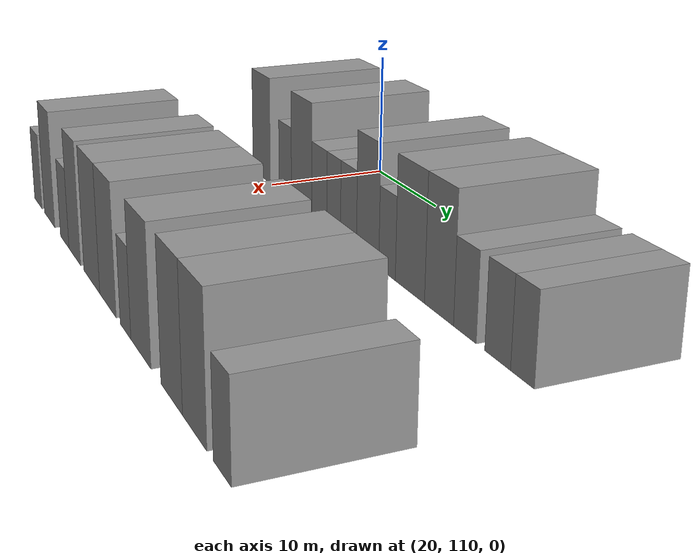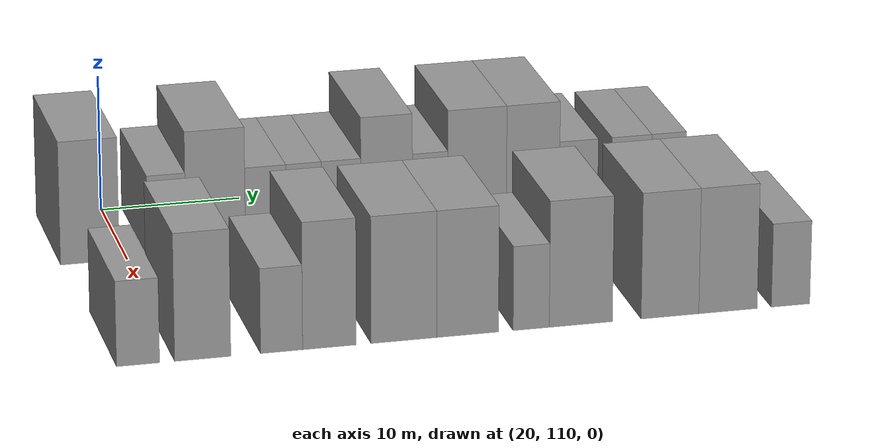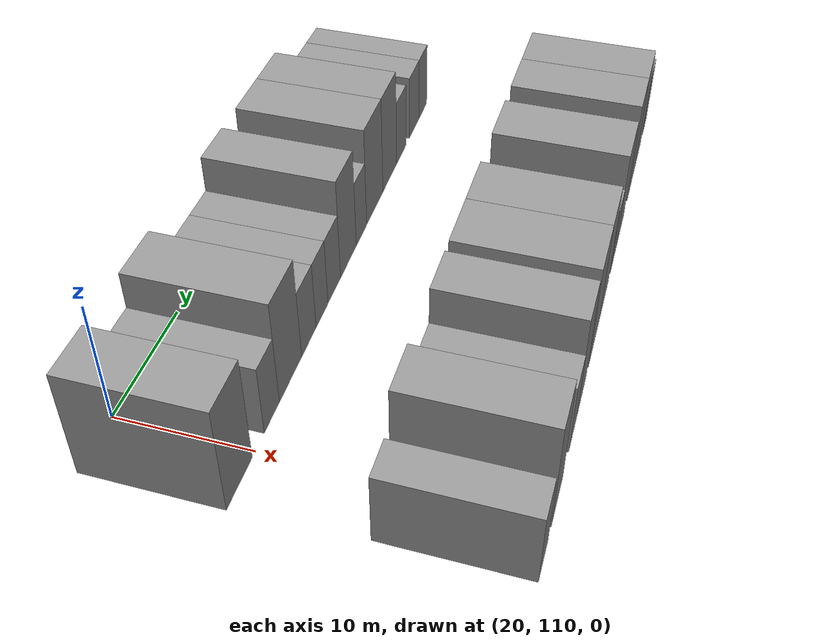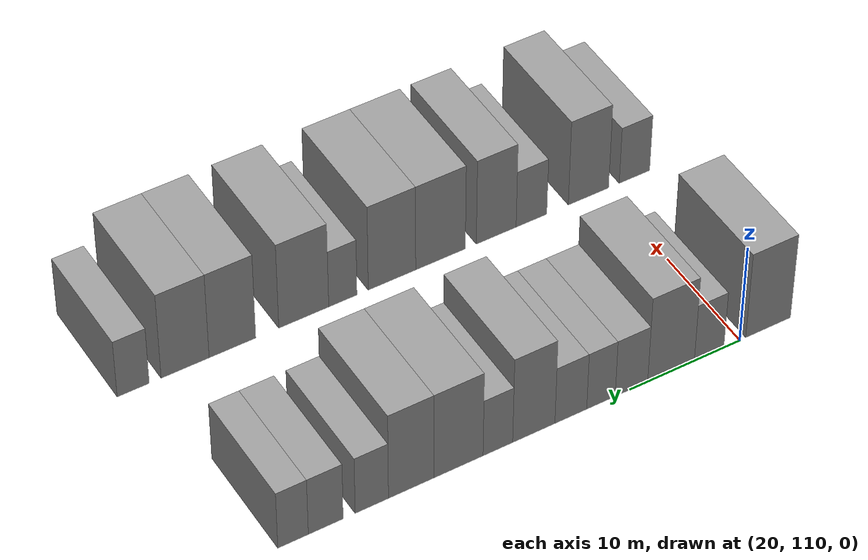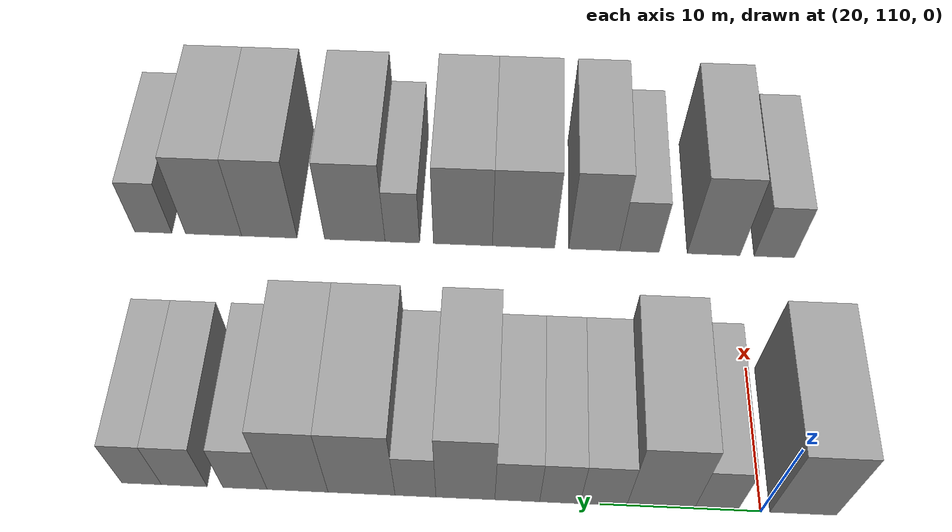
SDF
<sdf version="1.6">
 <world name="default">
  <model name="building_75">
   <static>1</static>
   <pose>25.0000 107.4009 0 0.000000 0.000000 0.000000</pose>
   <link name="link">
    <pose>0 0 4.50 0 0 0</pose>
    <collision name="collision"><geometry><box><size>10.0000 4.1283 9.0000</size></box></geometry></collision>
    <visual name="visual">
     <cast_shadows>0</cast_shadows>
     <geometry><box><size>10.0000 4.1283 9.0000</size></box></geometry>
     <material>
      <script>
       <uri>model://grey_wall/materials/scripts</uri>
       <uri>model://grey_wall/materials/textures</uri>
       <name>vrc/grey_wall</name>
      </script>
     </material>
    </visual>
   </link>
  </model>
  <model name="building_76">
   <static>1</static>
   <pose>25.0000 112.8104 0 0.000000 0.000000 0.000000</pose>
   <link name="link">
    <pose>0 0 3.00 0 0 0</pose>
    <collision name="collision"><geometry><box><size>10.0000 2.6907 6.0000</size></box></geometry></collision>
    <visual name="visual">
     <cast_shadows>0</cast_shadows>
     <geometry><box><size>10.0000 2.6907 6.0000</size></box></geometry>
     <material>
      <script>
       <uri>model://grey_wall/materials/scripts</uri>
       <uri>model://grey_wall/materials/textures</uri>
       <name>vrc/grey_wall</name>
      </script>
     </material>
    </visual>
   </link>
  </model>
  <model name="building_77">
   <static>1</static>
   <pose>25.0000 116.2598 0 0.000000 0.000000 0.000000</pose>
   <link name="link">
    <pose>0 0 4.50 0 0 0</pose>
    <collision name="collision"><geometry><box><size>10.0000 4.2081 9.0000</size></box></geometry></collision>
    <visual name="visual">
     <cast_shadows>0</cast_shadows>
     <geometry><box><size>10.0000 4.2081 9.0000</size></box></geometry>
     <material>
      <script>
       <uri>model://grey_wall/materials/scripts</uri>
       <uri>model://grey_wall/materials/textures</uri>
       <name>vrc/grey_wall</name>
      </script>
     </material>
    </visual>
   </link>
  </model>
  <model name="building_78">
   <static>1</static>
   <pose>25.0000 119.8204 0 0.000000 0.000000 0.000000</pose>
   <link name="link">
    <pose>0 0 3.00 0 0 0</pose>
    <collision name="collision"><geometry><box><size>10.0000 2.9129 6.0000</size></box></geometry></collision>
    <visual name="visual">
     <cast_shadows>0</cast_shadows>
     <geometry><box><size>10.0000 2.9129 6.0000</size></box></geometry>
     <material>
      <script>
       <uri>model://grey_wall/materials/scripts</uri>
       <uri>model://grey_wall/materials/textures</uri>
       <name>vrc/grey_wall</name>
      </script>
     </material>
    </visual>
   </link>
  </model>
  <model name="building_79">
   <static>1</static>
   <pose>25.0000 122.5388 0 0.000000 0.000000 0.000000</pose>
   <link name="link">
    <pose>0 0 3.00 0 0 0</pose>
    <collision name="collision"><geometry><box><size>10.0000 2.5240 6.0000</size></box></geometry></collision>
    <visual name="visual">
     <cast_shadows>0</cast_shadows>
     <geometry><box><size>10.0000 2.5240 6.0000</size></box></geometry>
     <material>
      <script>
       <uri>model://grey_wall/materials/scripts</uri>
       <uri>model://grey_wall/materials/textures</uri>
       <name>vrc/grey_wall</name>
      </script>
     </material>
    </visual>
   </link>
  </model>
  <model name="building_80">
   <static>1</static>
   <pose>25.0000 125.2032 0 0.000000 0.000000 0.000000</pose>
   <link name="link">
    <pose>0 0 3.00 0 0 0</pose>
    <collision name="collision"><geometry><box><size>10.0000 2.8047 6.0000</size></box></geometry></collision>
    <visual name="visual">
     <cast_shadows>0</cast_shadows>
     <geometry><box><size>10.0000 2.8047 6.0000</size></box></geometry>
     <material>
      <script>
       <uri>model://grey_wall/materials/scripts</uri>
       <uri>model://grey_wall/materials/textures</uri>
       <name>vrc/grey_wall</name>
      </script>
     </material>
    </visual>
   </link>
  </model>
  <model name="building_81">
   <static>1</static>
   <pose>25.0000 128.4523 0 0.000000 0.000000 0.000000</pose>
   <link name="link">
    <pose>0 0 4.50 0 0 0</pose>
    <collision name="collision"><geometry><box><size>10.0000 3.6936 9.0000</size></box></geometry></collision>
    <visual name="visual">
     <cast_shadows>0</cast_shadows>
     <geometry><box><size>10.0000 3.6936 9.0000</size></box></geometry>
     <material>
      <script>
       <uri>model://grey_wall/materials/scripts</uri>
       <uri>model://grey_wall/materials/textures</uri>
       <name>vrc/grey_wall</name>
      </script>
     </material>
    </visual>
   </link>
  </model>
  <model name="building_82">
   <static>1</static>
   <pose>25.0000 131.5829 0 0.000000 0.000000 0.000000</pose>
   <link name="link">
    <pose>0 0 3.00 0 0 0</pose>
    <collision name="collision"><geometry><box><size>10.0000 2.5675 6.0000</size></box></geometry></collision>
    <visual name="visual">
     <cast_shadows>0</cast_shadows>
     <geometry><box><size>10.0000 2.5675 6.0000</size></box></geometry>
     <material>
      <script>
       <uri>model://grey_wall/materials/scripts</uri>
       <uri>model://grey_wall/materials/textures</uri>
       <name>vrc/grey_wall</name>
      </script>
     </material>
    </visual>
   </link>
  </model>
  <model name="building_83">
   <static>1</static>
   <pose>25.0000 134.9808 0 0.000000 0.000000 0.000000</pose>
   <link name="link">
    <pose>0 0 4.50 0 0 0</pose>
    <collision name="collision"><geometry><box><size>10.0000 4.2282 9.0000</size></box></geometry></collision>
    <visual name="visual">
     <cast_shadows>0</cast_shadows>
     <geometry><box><size>10.0000 4.2282 9.0000</size></box></geometry>
     <material>
      <script>
       <uri>model://grey_wall/materials/scripts</uri>
       <uri>model://grey_wall/materials/textures</uri>
       <name>vrc/grey_wall</name>
      </script>
     </material>
    </visual>
   </link>
  </model>
  <model name="building_84">
   <static>1</static>
   <pose>25.0000 139.0226 0 0.000000 0.000000 0.000000</pose>
   <link name="link">
    <pose>0 0 4.50 0 0 0</pose>
    <collision name="collision"><geometry><box><size>10.0000 3.8554 9.0000</size></box></geometry></collision>
    <visual name="visual">
     <cast_shadows>0</cast_shadows>
     <geometry><box><size>10.0000 3.8554 9.0000</size></box></geometry>
     <material>
      <script>
       <uri>model://grey_wall/materials/scripts</uri>
       <uri>model://grey_wall/materials/textures</uri>
       <name>vrc/grey_wall</name>
      </script>
     </material>
    </visual>
   </link>
  </model>
  <model name="building_85">
   <static>1</static>
   <pose>25.0000 142.3522 0 0.000000 0.000000 0.000000</pose>
   <link name="link">
    <pose>0 0 3.00 0 0 0</pose>
    <collision name="collision"><geometry><box><size>10.0000 2.8039 6.0000</size></box></geometry></collision>
    <visual name="visual">
     <cast_shadows>0</cast_shadows>
     <geometry><box><size>10.0000 2.8039 6.0000</size></box></geometry>
     <material>
      <script>
       <uri>model://grey_wall/materials/scripts</uri>
       <uri>model://grey_wall/materials/textures</uri>
       <name>vrc/grey_wall</name>
      </script>
     </material>
    </visual>
   </link>
  </model>
  <model name="building_86">
   <static>1</static>
   <pose>25.0000 146.2095 0 0.000000 0.000000 0.000000</pose>
   <link name="link">
    <pose>0 0 3.00 0 0 0</pose>
    <collision name="collision"><geometry><box><size>10.0000 2.9105 6.0000</size></box></geometry></collision>
    <visual name="visual">
     <cast_shadows>0</cast_shadows>
     <geometry><box><size>10.0000 2.9105 6.0000</size></box></geometry>
     <material>
      <script>
       <uri>model://grey_wall/materials/scripts</uri>
       <uri>model://grey_wall/materials/textures</uri>
       <name>vrc/grey_wall</name>
      </script>
     </material>
    </visual>
   </link>
  </model>
  <model name="building_87">
   <static>1</static>
   <pose>25.0000 148.9270 0 0.000000 0.000000 0.000000</pose>
   <link name="link">
    <pose>0 0 3.00 0 0 0</pose>
    <collision name="collision"><geometry><box><size>10.0000 2.5246 6.0000</size></box></geometry></collision>
    <visual name="visual">
     <cast_shadows>0</cast_shadows>
     <geometry><box><size>10.0000 2.5246 6.0000</size></box></geometry>
     <material>
      <script>
       <uri>model://grey_wall/materials/scripts</uri>
       <uri>model://grey_wall/materials/textures</uri>
       <name>vrc/grey_wall</name>
      </script>
     </material>
    </visual>
   </link>
  </model>
  <model name="building_174">
   <static>1</static>
   <pose>44.0000 107.2010 0 0.000000 0.000000 0.000000</pose>
   <link name="link">
    <pose>0 0 3.00 0 0 0</pose>
    <collision name="collision"><geometry><box><size>10.0000 2.8796 6.0000</size></box></geometry></collision>
    <visual name="visual">
     <cast_shadows>0</cast_shadows>
     <geometry><box><size>10.0000 2.8796 6.0000</size></box></geometry>
     <material>
      <script>
       <uri>model://grey_wall/materials/scripts</uri>
       <uri>model://grey_wall/materials/textures</uri>
       <name>vrc/grey_wall</name>
      </script>
     </material>
    </visual>
   </link>
  </model>
  <model name="building_175">
   <static>1</static>
   <pose>44.0000 111.5287 0 0.000000 0.000000 0.000000</pose>
   <link name="link">
    <pose>0 0 4.50 0 0 0</pose>
    <collision name="collision"><geometry><box><size>10.0000 3.7758 9.0000</size></box></geometry></collision>
    <visual name="visual">
     <cast_shadows>0</cast_shadows>
     <geometry><box><size>10.0000 3.7758 9.0000</size></box></geometry>
     <material>
      <script>
       <uri>model://grey_wall/materials/scripts</uri>
       <uri>model://grey_wall/materials/textures</uri>
       <name>vrc/grey_wall</name>
      </script>
     </material>
    </visual>
   </link>
  </model>
  <model name="building_176">
   <static>1</static>
   <pose>44.0000 116.8384 0 0.000000 0.000000 0.000000</pose>
   <link name="link">
    <pose>0 0 3.00 0 0 0</pose>
    <collision name="collision"><geometry><box><size>10.0000 2.8436 6.0000</size></box></geometry></collision>
    <visual name="visual">
     <cast_shadows>0</cast_shadows>
     <geometry><box><size>10.0000 2.8436 6.0000</size></box></geometry>
     <material>
      <script>
       <uri>model://grey_wall/materials/scripts</uri>
       <uri>model://grey_wall/materials/textures</uri>
       <name>vrc/grey_wall</name>
      </script>
     </material>
    </visual>
   </link>
  </model>
  <model name="building_177">
   <static>1</static>
   <pose>44.0000 120.0829 0 0.000000 0.000000 0.000000</pose>
   <link name="link">
    <pose>0 0 4.50 0 0 0</pose>
    <collision name="collision"><geometry><box><size>10.0000 3.6452 9.0000</size></box></geometry></collision>
    <visual name="visual">
     <cast_shadows>0</cast_shadows>
     <geometry><box><size>10.0000 3.6452 9.0000</size></box></geometry>
     <material>
      <script>
       <uri>model://grey_wall/materials/scripts</uri>
       <uri>model://grey_wall/materials/textures</uri>
       <name>vrc/grey_wall</name>
      </script>
     </material>
    </visual>
   </link>
  </model>
  <model name="building_178">
   <static>1</static>
   <pose>44.0000 125.1528 0 0.000000 0.000000 0.000000</pose>
   <link name="link">
    <pose>0 0 4.50 0 0 0</pose>
    <collision name="collision"><geometry><box><size>10.0000 4.4946 9.0000</size></box></geometry></collision>
    <visual name="visual">
     <cast_shadows>0</cast_shadows>
     <geometry><box><size>10.0000 4.4946 9.0000</size></box></geometry>
     <material>
      <script>
       <uri>model://grey_wall/materials/scripts</uri>
       <uri>model://grey_wall/materials/textures</uri>
       <name>vrc/grey_wall</name>
      </script>
     </material>
    </visual>
   </link>
  </model>
  <model name="building_179">
   <static>1</static>
   <pose>44.0000 129.5226 0 0.000000 0.000000 0.000000</pose>
   <link name="link">
    <pose>0 0 4.50 0 0 0</pose>
    <collision name="collision"><geometry><box><size>10.0000 4.2451 9.0000</size></box></geometry></collision>
    <visual name="visual">
     <cast_shadows>0</cast_shadows>
     <geometry><box><size>10.0000 4.2451 9.0000</size></box></geometry>
     <material>
      <script>
       <uri>model://grey_wall/materials/scripts</uri>
       <uri>model://grey_wall/materials/textures</uri>
       <name>vrc/grey_wall</name>
      </script>
     </material>
    </visual>
   </link>
  </model>
  <model name="building_180">
   <static>1</static>
   <pose>44.0000 133.8965 0 0.000000 0.000000 0.000000</pose>
   <link name="link">
    <pose>0 0 3.00 0 0 0</pose>
    <collision name="collision"><geometry><box><size>10.0000 2.5027 6.0000</size></box></geometry></collision>
    <visual name="visual">
     <cast_shadows>0</cast_shadows>
     <geometry><box><size>10.0000 2.5027 6.0000</size></box></geometry>
     <material>
      <script>
       <uri>model://grey_wall/materials/scripts</uri>
       <uri>model://grey_wall/materials/textures</uri>
       <name>vrc/grey_wall</name>
      </script>
     </material>
    </visual>
   </link>
  </model>
  <model name="building_181">
   <static>1</static>
   <pose>44.0000 137.3396 0 0.000000 0.000000 0.000000</pose>
   <link name="link">
    <pose>0 0 4.50 0 0 0</pose>
    <collision name="collision"><geometry><box><size>10.0000 4.3833 9.0000</size></box></geometry></collision>
    <visual name="visual">
     <cast_shadows>0</cast_shadows>
     <geometry><box><size>10.0000 4.3833 9.0000</size></box></geometry>
     <material>
      <script>
       <uri>model://grey_wall/materials/scripts</uri>
       <uri>model://grey_wall/materials/textures</uri>
       <name>vrc/grey_wall</name>
      </script>
     </material>
    </visual>
   </link>
  </model>
  <model name="building_182">
   <static>1</static>
   <pose>44.0000 143.5479 0 0.000000 0.000000 0.000000</pose>
   <link name="link">
    <pose>0 0 4.50 0 0 0</pose>
    <collision name="collision"><geometry><box><size>10.0000 4.0334 9.0000</size></box></geometry></collision>
    <visual name="visual">
     <cast_shadows>0</cast_shadows>
     <geometry><box><size>10.0000 4.0334 9.0000</size></box></geometry>
     <material>
      <script>
       <uri>model://grey_wall/materials/scripts</uri>
       <uri>model://grey_wall/materials/textures</uri>
       <name>vrc/grey_wall</name>
      </script>
     </material>
    </visual>
   </link>
  </model>
  <model name="building_183">
   <static>1</static>
   <pose>44.0000 147.6163 0 0.000000 0.000000 0.000000</pose>
   <link name="link">
    <pose>0 0 4.50 0 0 0</pose>
    <collision name="collision"><geometry><box><size>10.0000 4.1034 9.0000</size></box></geometry></collision>
    <visual name="visual">
     <cast_shadows>0</cast_shadows>
     <geometry><box><size>10.0000 4.1034 9.0000</size></box></geometry>
     <material>
      <script>
       <uri>model://grey_wall/materials/scripts</uri>
       <uri>model://grey_wall/materials/textures</uri>
       <name>vrc/grey_wall</name>
      </script>
     </material>
    </visual>
   </link>
  </model>
  <model name="building_184">
   <static>1</static>
   <pose>44.0000 152.0263 0 0.000000 0.000000 0.000000</pose>
   <link name="link">
    <pose>0 0 3.00 0 0 0</pose>
    <collision name="collision"><geometry><box><size>10.0000 2.7167 6.0000</size></box></geometry></collision>
    <visual name="visual">
     <cast_shadows>0</cast_shadows>
     <geometry><box><size>10.0000 2.7167 6.0000</size></box></geometry>
     <material>
      <script>
       <uri>model://grey_wall/materials/scripts</uri>
       <uri>model://grey_wall/materials/textures</uri>
       <name>vrc/grey_wall</name>
      </script>
     </material>
    </visual>
   </link>
  </model>
 </world>
</sdf>
